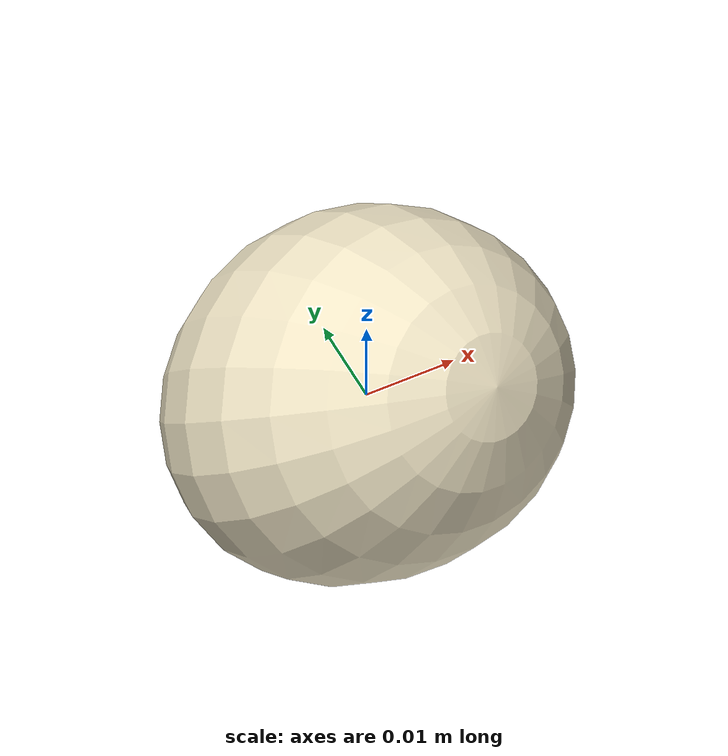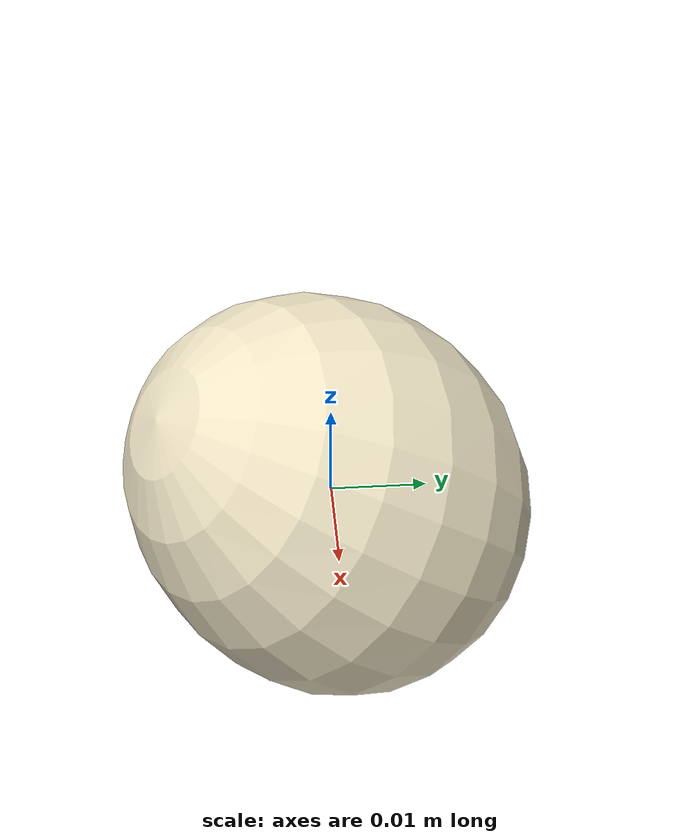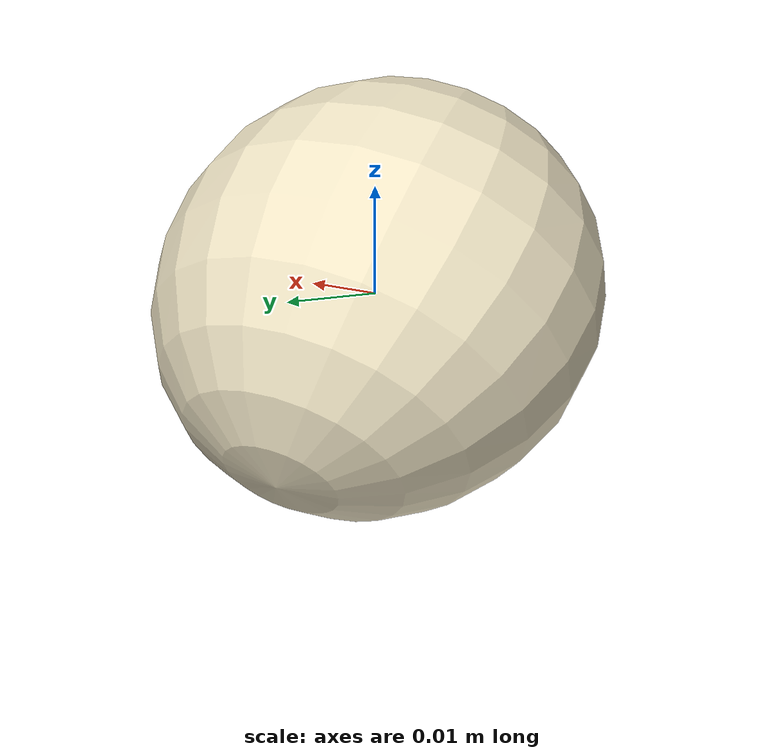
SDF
<?xml version="1.0"?>
<sdf version="1.7">
  <model name="cotton_pick_C_09">
    <static>false</static>
    <allow_auto_disable>false</allow_auto_disable>
    <link name="cotton_pick_C_09_link">
      <gravity>false</gravity>
      <self_collide>false</self_collide>
      <inertial>
        <mass>0.01200</mass>
        <inertia>
          <ixx>0.00000162</ixx>
          <iyy>0.00000162</iyy>
          <izz>0.00000162</izz>
          <ixy>0</ixy>
          <ixz>0</ixz>
          <iyz>0</iyz>
        </inertia>
      </inertial>
      <visual name="cotton_pick_C_09_visual">
        <geometry>
          <mesh>
            <uri>model://cotton_pick_C_09/meshes/cotton_pick_C_09.dae</uri>
          </mesh>
        </geometry>
      </visual>
      <collision name="cotton_pick_C_09_sphere_collision">
        <geometry>
          <sphere>
            <radius>0.01839</radius>
          </sphere>
        </geometry>
        <surface>
          <friction>
            <ode>
              <mu>1.6</mu>
              <mu2>1.6</mu2>
            </ode>
          </friction>
          <contact>
            <ode>
              <kp>8000</kp>
              <kd>80</kd>
            </ode>
          </contact>
        </surface>
      </collision>
    </link>
  </model>
</sdf>
